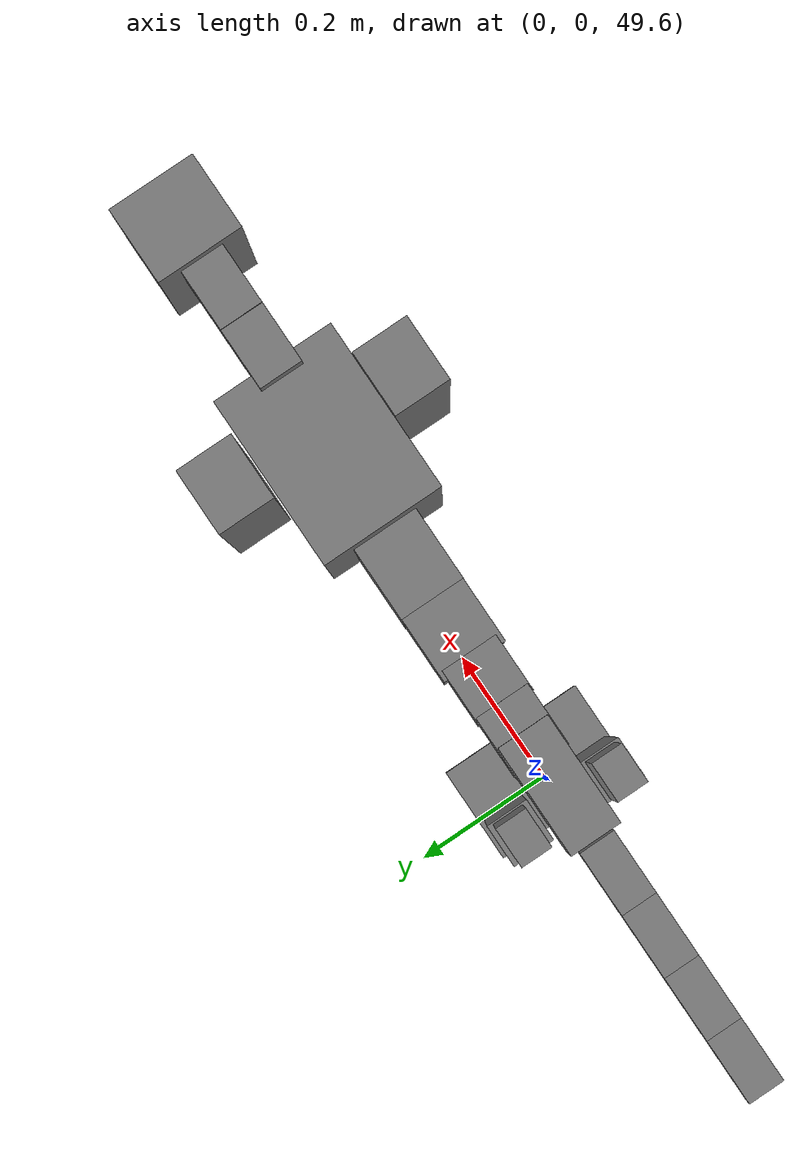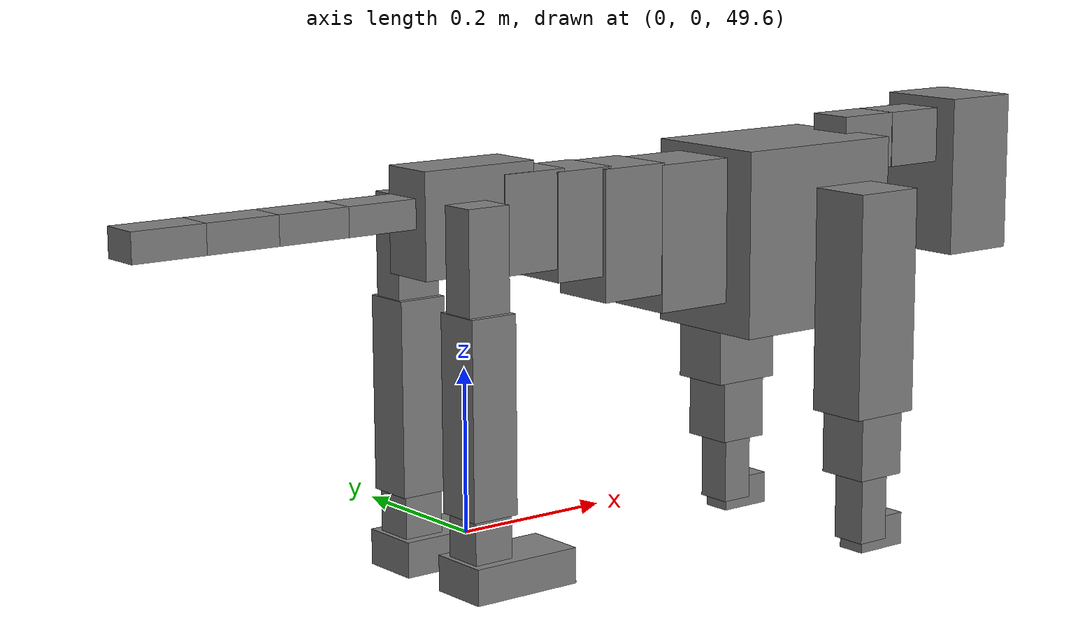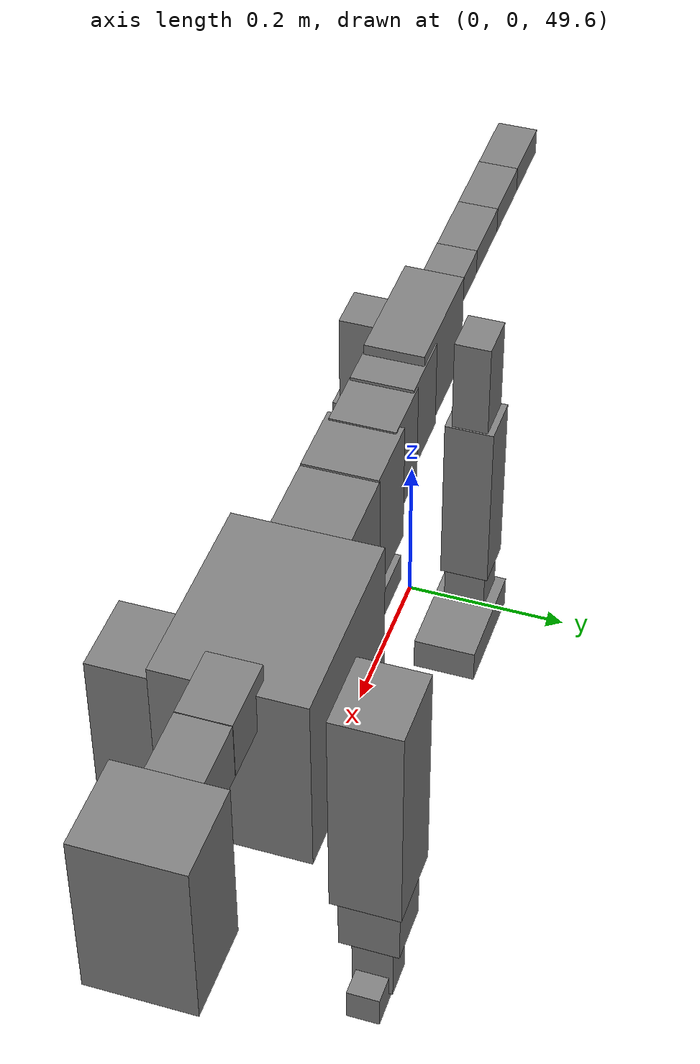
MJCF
<mujoco model="dog">

    <default>
        <joint armature="0.02" stiffness="1" damping="0.2" limited="true"/>
        <geom condim="3" friction="1 0.05 0.05" margin="0.01"/>
        <motor ctrllimited="true" ctrlrange="-1.0 1.0" forcelimited="true" gear="50"/>
    </default>

    <compiler inertiafromgeom="true" angle="radian"/>

    <option timestep="0.016" iterations="50" tolerance="1e-10" solver="Newton" jacobian="dense" cone="pyramidal"/>

    <size nconmax="20000" njmax="60000" nstack="5000000"/>
    <visual>
        <map force="0.1" zfar="30"/>
        <rgba haze="0.15 0.25 0.35 1"/>
        <quality shadowsize="2048"/>
        <global offwidth="800" offheight="800"/>
    </visual>

    <asset>
        <texture type="skybox" builtin="gradient" rgb1="0.3 0.5 0.7" rgb2="0 0 0" width="512" height="512"/>
        <texture name="texplane" type="2d" builtin="checker" rgb1=".2 .3 .4" rgb2=".1 0.15 0.2" width="512" height="512"
                 mark="cross" markrgb=".8 .8 .8"/>
        <texture name="texgeom" type="cube" builtin="flat" mark="cross" width="127" height="1278" rgb1="0.8 0.6 0.4"
                 rgb2="0.8 0.6 0.4" markrgb="1 1 1" random="0.01"/>

        <material name="matplane" reflectance="0.3" texture="texplane" texrepeat="1 1" texuniform="true"/>
        <material name="matgeom" texture="texgeom" texuniform="true" rgba="0.8 0.6 .4 1"/>
    </asset>

    <worldbody>
        <geom name="floor" pos="0 0 0" size="0 0 .25" type="plane" material="matplane" condim="3"/>

        <light directional="false" diffuse=".2 .2 .2" specular="0 0 0" pos="0 0 5" dir="0 0 -1" castshadow="false"/>
        <light mode="targetbodycom" target="torso" directional="false" diffuse=".8 .8 .8" specular="0.3 0.3 0.3"
               pos="0 0 4.0" dir="0 0 -1"/>

        <body name="root" pos="0 0 50">
            <freejoint name="root_1"/>
            <geom type="box" pos="0 0 -0.02" size="0.0774  0.0358  0.063" density="2030"/>

            <body name="spine1" pos="0.054 0 0">
                <joint name="spine1_y" axis="0 1 0" range="0 0.7" limited="true"/>
                <geom type="box" pos="0.02375 0 -0.03" size="0.04375  0.0375  0.05985" density="2030"/>

                <body name="spine2" pos="0.0612 0 0">
                    <joint name="spine2_y" axis="0 1 0" range="-0.15 0.15" limited="true"/>
                    <geom type="box" pos="0.03555  0  -0.04" size="0.04055  0.039  0.06615" density="2030"/>

                    <body name="spine3" pos="0.0730 0 0">
                        <joint name="spine3_y" axis="0 1 0" range="-0.15 0.15" limited="true"/>
                        <geom type="box" pos="0.03555  0  -0.057" size="0.04555  0.0445  0.081" density="2030"/>

                        <body name="spine4" pos="0.0780 0 0">
                            <joint name="spine4_y" axis="0 1 0" range="-0.15 0.15" limited="true"/>
                            <geom type="box" pos="0.05265  0  -0.07" size="0.05265  0.045  0.09135" density="2030"/>

                            <body name="torso" pos="0.1082 0 0">
                                <joint name="torso_y" axis="0 1 0" range="-0.15 0.15" limited="true"/>
                                <geom type="box" pos="0.11925  0  -0.085" size="0.11925  0.085  0.11745"
                                      density="2030"/>

                                <body name="neck1" pos="0.2160  0   0.0180">
                                    <joint name="neck1_y" axis="0 1 0" range="-1.2  -1" limited="true"/>
                                    <geom type="box" pos="0.0423  0  0" size="0.0423  0.03  0.036" density="2325"/>

                                    <body name="neck2" pos="0.0853  0  0">
                                        <joint name="neck2_y" axis="0 1 0" range="0.1  0" limited="true"/>
                                        <geom type="box" pos="0.0423  0  0" size="0.0423  0.03  0.036" density="2325"/>

                                        <body name="head" pos="0.0853  0  0">
                                            <joint name="head_y" axis="0 1 0" range="-0.3  -0.2" limited="true"/>
                                            <geom type="box" pos="0.0531  0  -0.055" size="0.0531  0.06  0.1044"
                                                  density="4030"/>

                                        </body>
                                    </body>
                                </body>

                                <body name="front_shoulder" pos="0.156  0   -0.0480">
                                    <joint name="front_shoulder_y" axis="0 1 0" range="-1 1.5" limited="true"/>
                                    <geom type="box" pos="0 0.13 -0.1163" size="0.0476  0.0407  0.1430" density="1158"/>
                                    <geom type="box" pos="0 -0.13 -0.1163" size="0.0476  0.0407  0.1430"
                                          density="1158"/>

                                    <body name="front_elbow" pos="0  0  -0.2326">
                                        <joint name="front_elbow_y" axis="0 1 0" range="-2 0" limited="true"/>
                                        <geom type="box" pos="0 0.13 -0.0542" size="0.0344  0.0352  0.0542"
                                              density="1081"/>
                                        <geom type="box" pos="0 -0.13 -0.0542" size="0.0344  0.0352  0.0542"
                                              density="1081"/>

                                        <body name="front_wrist" pos="0  0  -0.1084">
                                            <joint name="front_wrist_y" axis="0 1 0" range="-0.2 0" limited="true"/>
                                            <geom type="box" pos="0 0.13 -0.0368" size="0.0216  0.0240  0.0500"
                                                  density="1664"/>
                                            <geom type="box" pos="0 -0.13 -0.0368" size="0.0216  0.0240  0.0500"
                                                  density="1664"/>

                                            <body name="front_finger_end" pos="0  0  -0.0737">
                                                <joint name="front_finger_y" axis="0 1 0" range="-0.4 1"
                                                       limited="true"/>
                                                <geom type="box" pos="0.0194  0.13  -0.0060"
                                                      size="0.0355  0.0194  0.0210" density="1515"/>
                                                <geom type="box" pos="0.0194  -0.13  -0.0060"
                                                      size="0.0355  0.0194  0.0210" density="1515"/>

                                            </body>

                                        </body>
                                    </body>
                                </body>

                            </body>
                        </body>
                    </body>
                </body>
            </body>

            <body name="back_hip" pos="-0.03 0 -0.018">
                <joint name="back_hip_y" axis="0 1 0" range="-1.5 0.3" limited="true"/>
                <geom type="box" pos="0 0.07 -0.0586" size="0.0283  0.0222  0.0814" density="1154"/>
                <geom type="box" pos="0 -0.07 -0.0586" size="0.0283  0.0222  0.0814" density="1154"/>

                <body name="back_knee" pos="0  0  -0.1172">
                    <joint name="back_knee_y" axis="0 1 0" range="0 2.8" limited="true"/>
                    <geom type="box" pos="0 0.07 -0.1030" size="0.0307  0.0302  0.1185" density="1227"/>
                    <geom type="box" pos="0 -0.07 -0.1030" size="0.0307  0.0302  0.1185" density="1227"/>

                    <body name="back_ankle" pos="0  0  -0.2059">
                        <joint name="back_ankle_y" axis="0 1 0" range="-2.2 0" limited="true"/>
                        <geom type="box" pos="0 0.07 -0.0414" size="0.0257  0.0257  0.0527" density="1284"/>
                        <geom type="box" pos="0 -0.07 -0.0414" size="0.0257  0.0257  0.0527" density="1284"/>

                        <body name="back_toe_end" pos="0  0  -0.0828">
                            <joint name="back_toe_y" axis="0 1 0" range="-0.4 1" limited="true"/>
                            <geom type="box" pos="0.0388  0.07  -0.0068" size="0.0712  0.0388  0.0218" density="1515"/>
                            <geom type="box" pos="0.0388  -0.07  -0.0068" size="0.0712  0.0388  0.0218" density="1515"/>

                        </body>
                    </body>
                </body>
            </body>

            <body name="tail1" pos="-0.074 0 -0.006">
                <joint name="tail1_y" axis="0 1 0" range="-0.2 0.2" limited="true"/>
                <geom type="box" pos="-0.0536  0  0" size="0.045  0.025  0.0175" density="1587"/>

                <body name="tail2" pos="-0.09 0 0">
                    <joint name="tail2_y" axis="0 1 0" range="-0.2 0.2" limited="true"/>
                    <geom type="box" pos="-0.0536  0  0" size="0.045  0.025  0.0175" density="1587"/>

                    <body name="tail3" pos="-0.09 0 0">
                        <joint name="tail3_y" axis="0 1 0" range="-0.2 0.2" limited="true"/>
                        <geom type="box" pos="-0.0536  0  0" size="0.045  0.025  0.0175" density="1587"/>

                        <body name="tail4" pos="-0.09 0 0">
                            <joint name="tail4_y" axis="0 1 0" range="-0.2 0.2" limited="true"/>
                            <geom type="box" pos="-0.0536  0  0" size="0.045  0.025  0.0175" density="1587"/>

                        </body>
                    </body>
                </body>
            </body>
        </body>
    </worldbody>

    <actuator>
        <motor joint="spine1_y" forcerange="-150 150     "/>
        <motor joint="spine2_y" forcerange="-150 150     "/>
        <motor joint="spine3_y" forcerange="-150 150     "/>
        <motor joint="spine4_y" forcerange="-150 150     "/>
        <motor joint="torso_y" forcerange="-150 150     "/>
        <motor joint="neck1_y" forcerange="-100 100       "/>
        <motor joint="neck2_y" forcerange="-100 100       "/>
        <motor joint="head_y" forcerange="-150 150       "/>
        <motor joint="front_shoulder_y" forcerange="-171.14 199.94"/>
        <motor joint="front_elbow_y" forcerange="-166.05 189.65"/>
        <motor joint="front_wrist_y" forcerange="-95.58 96.47"/>
        <motor joint="front_finger_y" forcerange="-28.20 35.13"/>
        <motor joint="back_hip_y" forcerange="-250.68 245.43"/>
        <motor joint="back_knee_y" forcerange="-369.19 270.69"/>
        <motor joint="back_angle_y" forcerange="-243.17 68.40"/>
        <motor joint="back_toe_y" forcerange="-91.20 139.54"/>
        <motor joint="tail1_y" forcerange="-50 50     "/>
        <motor joint="tail2_y" forcerange="-50 50     "/>
        <motor joint="tail3_y" forcerange="-50 50     "/>
        <motor joint="tail4_y" forcerange="-50 50     "/>
    </actuator>
</mujoco>
